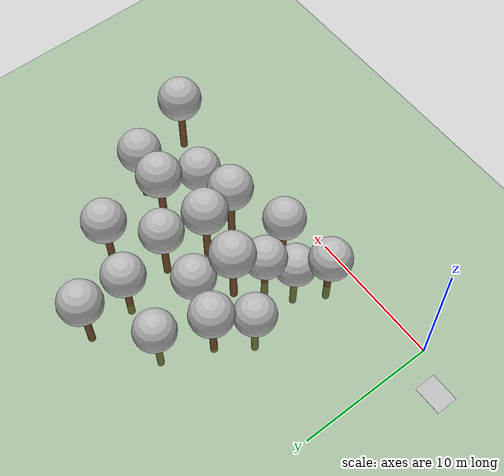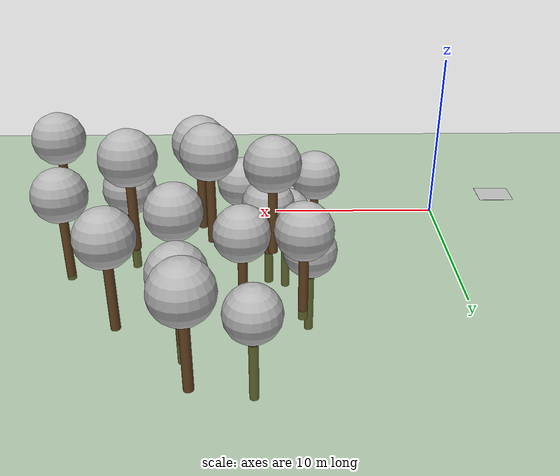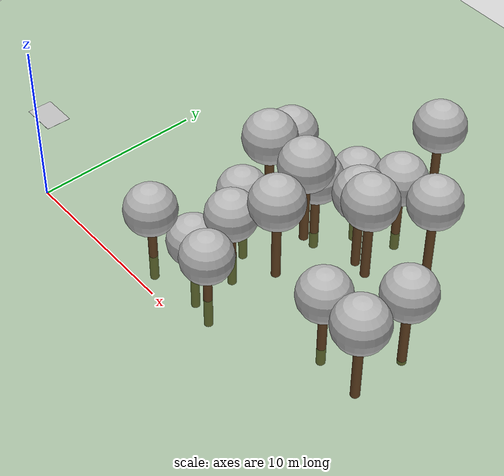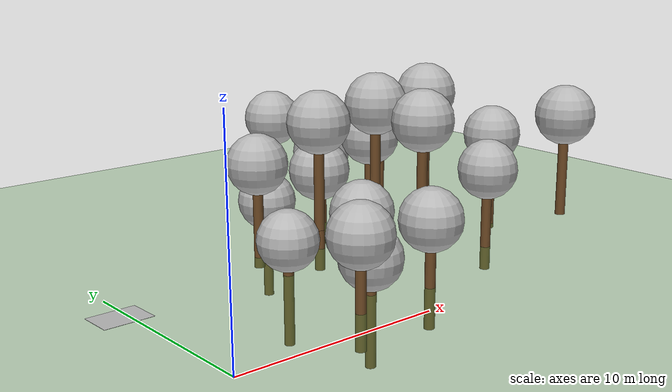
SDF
<sdf version="1.6">
 <world name="default">
  <model name="ground_plane">
   <static>1</static>
   <link name="link">
    <collision name="collision">
     <geometry><plane><normal>0 0 1</normal><size>250 250</size></plane></geometry>
     <surface><friction><ode><mu>1</mu><mu2>1</mu2></ode></friction></surface>
    </collision>
    <visual name="grass">
     <cast_shadows>0</cast_shadows>
     <geometry><plane><normal>0 0 1</normal><size>150 250</size></plane></geometry>
     <material>
      <script><uri>file://media/materials/scripts/Gazebo.material</uri><name>Gazebo/Grass</name></script>
     </material>
    </visual>
   </link>
  </model>
  <model name="tree_simple_1">
   <static>1</static>
   <link name="link">
    <pose>0 0 0.1 0 -0 0</pose>
    <inertial>
     <mass>666</mass>
     <inertia>
      <ixx>0.0861167</ixx>
      <ixy>0</ixy>
      <ixz>0</ixz>
      <iyy>0.0861167</iyy>
      <iyz>0</iyz>
      <izz>0.0861167</izz>
     </inertia>
    </inertial>
    <collision name="collision_trunk">
     <pose>0 0 2 0 -0 0</pose>
     <geometry><cylinder><radius>0.25</radius><length>4</length></cylinder></geometry>
     <surface>
      <contact>
       <poissons_ratio>0.347</poissons_ratio>
       <elastic_modulus>8.8e+09</elastic_modulus>
       <ode><kp>100000</kp><kd>100</kd><max_vel>100</max_vel><min_depth>0.001</min_depth></ode>
      </contact>
      <friction>
       <torsional>
        <coefficient>1</coefficient>
        <use_patch_radius>0</use_patch_radius>
        <surface_radius>0.01</surface_radius>
       </torsional>
      </friction>
     </surface>
    </collision>
    <collision name="collision_treetop">
     <pose>0 0 5.2 0 -0 0</pose>
     <geometry><sphere><radius>1.5</radius></sphere></geometry>
     <surface>
      <contact>
       <poissons_ratio>0.347</poissons_ratio>
       <elastic_modulus>8.8e+09</elastic_modulus>
       <ode><kp>100000</kp><kd>100</kd><max_vel>100</max_vel><min_depth>0.001</min_depth></ode>
      </contact>
      <friction>
       <torsional>
        <coefficient>1</coefficient>
        <use_patch_radius>0</use_patch_radius>
        <surface_radius>0.01</surface_radius>
       </torsional>
      </friction>
     </surface>
    </collision>
    <visual name="trunk">
     <pose>0 0 2 0 -0 0</pose>
     <geometry><cylinder><radius>0.25</radius><length>4</length></cylinder></geometry>
     <material>
      <script>
       <uri>model://tree_simple/scripts</uri>
       <uri>model://tree_simple/materials/textures</uri>
       <name>TreeSimple/Trunk</name>
      </script>
     </material>
    </visual>
    <visual name="treetop">
     <pose>0 0 5.2 0 -0 0</pose>
     <geometry><sphere><radius>1.5</radius></sphere></geometry>
     <material>
      <script>
       <uri>model://tree_simple/scripts</uri>
       <uri>model://tree_simple/materials/textures</uri>
       <name>TreeSimple/Treetop</name>
      </script>
     </material>
    </visual>
   </link>
   <pose>18.1214 12.2632 0 0 -0 0</pose>
  </model>
  <model name="tree_simple_2">
   <static>1</static>
   <link name="link">
    <pose>0 0 0.1 0 -0 0</pose>
    <inertial>
     <mass>666</mass>
     <inertia>
      <ixx>0.0861167</ixx>
      <ixy>0</ixy>
      <ixz>0</ixz>
      <iyy>0.0861167</iyy>
      <iyz>0</iyz>
      <izz>0.0861167</izz>
     </inertia>
    </inertial>
    <collision name="collision_trunk">
     <pose>0 0 2 0 -0 0</pose>
     <geometry><cylinder><radius>0.25</radius><length>4</length></cylinder></geometry>
     <surface>
      <contact>
       <poissons_ratio>0.347</poissons_ratio>
       <elastic_modulus>8.8e+09</elastic_modulus>
       <ode><kp>100000</kp><kd>100</kd><max_vel>100</max_vel><min_depth>0.001</min_depth></ode>
      </contact>
      <friction>
       <torsional>
        <coefficient>1</coefficient>
        <use_patch_radius>0</use_patch_radius>
        <surface_radius>0.01</surface_radius>
       </torsional>
      </friction>
     </surface>
    </collision>
    <collision name="collision_treetop">
     <pose>0 0 5.2 0 -0 0</pose>
     <geometry><sphere><radius>1.5</radius></sphere></geometry>
     <surface>
      <contact>
       <poissons_ratio>0.347</poissons_ratio>
       <elastic_modulus>8.8e+09</elastic_modulus>
       <ode><kp>100000</kp><kd>100</kd><max_vel>100</max_vel><min_depth>0.001</min_depth></ode>
      </contact>
      <friction>
       <torsional>
        <coefficient>1</coefficient>
        <use_patch_radius>0</use_patch_radius>
        <surface_radius>0.01</surface_radius>
       </torsional>
      </friction>
     </surface>
    </collision>
    <visual name="trunk">
     <pose>0 0 2 0 -0 0</pose>
     <geometry><cylinder><radius>0.25</radius><length>4</length></cylinder></geometry>
     <material>
      <script>
       <uri>model://tree_simple/scripts</uri>
       <uri>model://tree_simple/materials/textures</uri>
       <name>TreeSimple/Trunk</name>
      </script>
     </material>
    </visual>
    <visual name="treetop">
     <pose>0 0 5.2 0 -0 0</pose>
     <geometry><sphere><radius>1.5</radius></sphere></geometry>
     <material>
      <script>
       <uri>model://tree_simple/scripts</uri>
       <uri>model://tree_simple/materials/textures</uri>
       <name>TreeSimple/Treetop</name>
      </script>
     </material>
    </visual>
   </link>
   <pose>8.26028 7.60293 -3.64952 0 -0 0</pose>
  </model>
  <model name="tree_simple_11">
   <static>1</static>
   <link name="link">
    <pose>0 0 0.1 0 -0 0</pose>
    <inertial>
     <mass>666</mass>
     <inertia>
      <ixx>0.0861167</ixx>
      <ixy>0</ixy>
      <ixz>0</ixz>
      <iyy>0.0861167</iyy>
      <iyz>0</iyz>
      <izz>0.0861167</izz>
     </inertia>
    </inertial>
    <collision name="collision_trunk">
     <pose>0 0 2 0 -0 0</pose>
     <geometry><cylinder><radius>0.25</radius><length>4</length></cylinder></geometry>
     <surface>
      <contact>
       <poissons_ratio>0.347</poissons_ratio>
       <elastic_modulus>8.8e+09</elastic_modulus>
       <ode><kp>100000</kp><kd>100</kd><max_vel>100</max_vel><min_depth>0.001</min_depth></ode>
      </contact>
      <friction>
       <torsional>
        <coefficient>1</coefficient>
        <use_patch_radius>0</use_patch_radius>
        <surface_radius>0.01</surface_radius>
       </torsional>
      </friction>
     </surface>
    </collision>
    <collision name="collision_treetop">
     <pose>0 0 5.2 0 -0 0</pose>
     <geometry><sphere><radius>1.5</radius></sphere></geometry>
     <surface>
      <contact>
       <poissons_ratio>0.347</poissons_ratio>
       <elastic_modulus>8.8e+09</elastic_modulus>
       <ode><kp>100000</kp><kd>100</kd><max_vel>100</max_vel><min_depth>0.001</min_depth></ode>
      </contact>
      <friction>
       <torsional>
        <coefficient>1</coefficient>
        <use_patch_radius>0</use_patch_radius>
        <surface_radius>0.01</surface_radius>
       </torsional>
      </friction>
     </surface>
    </collision>
    <visual name="trunk">
     <pose>0 0 2 0 -0 0</pose>
     <geometry><cylinder><radius>0.25</radius><length>4</length></cylinder></geometry>
     <material>
      <script>
       <uri>model://tree_simple/scripts</uri>
       <uri>model://tree_simple/materials/textures</uri>
       <name>TreeSimple/Trunk</name>
      </script>
     </material>
    </visual>
    <visual name="treetop">
     <pose>0 0 5.2 0 -0 0</pose>
     <geometry><sphere><radius>1.5</radius></sphere></geometry>
     <material>
      <script>
       <uri>model://tree_simple/scripts</uri>
       <uri>model://tree_simple/materials/textures</uri>
       <name>TreeSimple/Treetop</name>
      </script>
     </material>
    </visual>
   </link>
   <pose>14.0945 16.6625 0 0 -0 0</pose>
  </model>
  <model name="tree_simple_12">
   <static>1</static>
   <link name="link">
    <pose>0 0 0.1 0 -0 0</pose>
    <inertial>
     <mass>666</mass>
     <inertia>
      <ixx>0.0861167</ixx>
      <ixy>0</ixy>
      <ixz>0</ixz>
      <iyy>0.0861167</iyy>
      <iyz>0</iyz>
      <izz>0.0861167</izz>
     </inertia>
    </inertial>
    <collision name="collision_trunk">
     <pose>0 0 2 0 -0 0</pose>
     <geometry><cylinder><radius>0.25</radius><length>4</length></cylinder></geometry>
     <surface>
      <contact>
       <poissons_ratio>0.347</poissons_ratio>
       <elastic_modulus>8.8e+09</elastic_modulus>
       <ode><kp>100000</kp><kd>100</kd><max_vel>100</max_vel><min_depth>0.001</min_depth></ode>
      </contact>
      <friction>
       <torsional>
        <coefficient>1</coefficient>
        <use_patch_radius>0</use_patch_radius>
        <surface_radius>0.01</surface_radius>
       </torsional>
      </friction>
     </surface>
    </collision>
    <collision name="collision_treetop">
     <pose>0 0 5.2 0 -0 0</pose>
     <geometry><sphere><radius>1.5</radius></sphere></geometry>
     <surface>
      <contact>
       <poissons_ratio>0.347</poissons_ratio>
       <elastic_modulus>8.8e+09</elastic_modulus>
       <ode><kp>100000</kp><kd>100</kd><max_vel>100</max_vel><min_depth>0.001</min_depth></ode>
      </contact>
      <friction>
       <torsional>
        <coefficient>1</coefficient>
        <use_patch_radius>0</use_patch_radius>
        <surface_radius>0.01</surface_radius>
       </torsional>
      </friction>
     </surface>
    </collision>
    <visual name="trunk">
     <pose>0 0 2 0 -0 0</pose>
     <geometry><cylinder><radius>0.25</radius><length>4</length></cylinder></geometry>
     <material>
      <script>
       <uri>model://tree_simple/scripts</uri>
       <uri>model://tree_simple/materials/textures</uri>
       <name>TreeSimple/Trunk</name>
      </script>
     </material>
    </visual>
    <visual name="treetop">
     <pose>0 0 5.2 0 -0 0</pose>
     <geometry><sphere><radius>1.5</radius></sphere></geometry>
     <material>
      <script>
       <uri>model://tree_simple/scripts</uri>
       <uri>model://tree_simple/materials/textures</uri>
       <name>TreeSimple/Treetop</name>
      </script>
     </material>
    </visual>
   </link>
   <pose>11.8716 9.75891 -1.275 0 -0 0</pose>
  </model>
  <model name="tree_simple_13">
   <static>1</static>
   <link name="link">
    <pose>0 0 0.1 0 -0 0</pose>
    <inertial>
     <mass>666</mass>
     <inertia>
      <ixx>0.0861167</ixx>
      <ixy>0</ixy>
      <ixz>0</ixz>
      <iyy>0.0861167</iyy>
      <iyz>0</iyz>
      <izz>0.0861167</izz>
     </inertia>
    </inertial>
    <collision name="collision_trunk">
     <pose>0 0 2 0 -0 0</pose>
     <geometry><cylinder><radius>0.25</radius><length>4</length></cylinder></geometry>
     <surface>
      <contact>
       <poissons_ratio>0.347</poissons_ratio>
       <elastic_modulus>8.8e+09</elastic_modulus>
       <ode><kp>100000</kp><kd>100</kd><max_vel>100</max_vel><min_depth>0.001</min_depth></ode>
      </contact>
      <friction>
       <torsional>
        <coefficient>1</coefficient>
        <use_patch_radius>0</use_patch_radius>
        <surface_radius>0.01</surface_radius>
       </torsional>
      </friction>
     </surface>
    </collision>
    <collision name="collision_treetop">
     <pose>0 0 5.2 0 -0 0</pose>
     <geometry><sphere><radius>1.5</radius></sphere></geometry>
     <surface>
      <contact>
       <poissons_ratio>0.347</poissons_ratio>
       <elastic_modulus>8.8e+09</elastic_modulus>
       <ode><kp>100000</kp><kd>100</kd><max_vel>100</max_vel><min_depth>0.001</min_depth></ode>
      </contact>
      <friction>
       <torsional>
        <coefficient>1</coefficient>
        <use_patch_radius>0</use_patch_radius>
        <surface_radius>0.01</surface_radius>
       </torsional>
      </friction>
     </surface>
    </collision>
    <visual name="trunk">
     <pose>0 0 2 0 -0 0</pose>
     <geometry><cylinder><radius>0.25</radius><length>4</length></cylinder></geometry>
     <material>
      <script>
       <uri>model://tree_simple/scripts</uri>
       <uri>model://tree_simple/materials/textures</uri>
       <name>TreeSimple/Trunk</name>
      </script>
     </material>
    </visual>
    <visual name="treetop">
     <pose>0 0 5.2 0 -0 0</pose>
     <geometry><sphere><radius>1.5</radius></sphere></geometry>
     <material>
      <script>
       <uri>model://tree_simple/scripts</uri>
       <uri>model://tree_simple/materials/textures</uri>
       <name>TreeSimple/Treetop</name>
      </script>
     </material>
    </visual>
   </link>
   <pose>10.5318 4.98436 -2.12992 0 -0 0</pose>
  </model>
  <model name="tree_simple_14">
   <static>1</static>
   <link name="link">
    <pose>0 0 0.1 0 -0 0</pose>
    <inertial>
     <mass>666</mass>
     <inertia>
      <ixx>0.0861167</ixx>
      <ixy>0</ixy>
      <ixz>0</ixz>
      <iyy>0.0861167</iyy>
      <iyz>0</iyz>
      <izz>0.0861167</izz>
     </inertia>
    </inertial>
    <collision name="collision_trunk">
     <pose>0 0 2 0 -0 0</pose>
     <geometry><cylinder><radius>0.25</radius><length>4</length></cylinder></geometry>
     <surface>
      <contact>
       <poissons_ratio>0.347</poissons_ratio>
       <elastic_modulus>8.8e+09</elastic_modulus>
       <ode><kp>100000</kp><kd>100</kd><max_vel>100</max_vel><min_depth>0.001</min_depth></ode>
      </contact>
      <friction>
       <torsional>
        <coefficient>1</coefficient>
        <use_patch_radius>0</use_patch_radius>
        <surface_radius>0.01</surface_radius>
       </torsional>
      </friction>
     </surface>
    </collision>
    <collision name="collision_treetop">
     <pose>0 0 5.2 0 -0 0</pose>
     <geometry><sphere><radius>1.5</radius></sphere></geometry>
     <surface>
      <contact>
       <poissons_ratio>0.347</poissons_ratio>
       <elastic_modulus>8.8e+09</elastic_modulus>
       <ode><kp>100000</kp><kd>100</kd><max_vel>100</max_vel><min_depth>0.001</min_depth></ode>
      </contact>
      <friction>
       <torsional>
        <coefficient>1</coefficient>
        <use_patch_radius>0</use_patch_radius>
        <surface_radius>0.01</surface_radius>
       </torsional>
      </friction>
     </surface>
    </collision>
    <visual name="trunk">
     <pose>0 0 2 0 -0 0</pose>
     <geometry><cylinder><radius>0.25</radius><length>4</length></cylinder></geometry>
     <material>
      <script>
       <uri>model://tree_simple/scripts</uri>
       <uri>model://tree_simple/materials/textures</uri>
       <name>TreeSimple/Trunk</name>
      </script>
     </material>
    </visual>
    <visual name="treetop">
     <pose>0 0 5.2 0 -0 0</pose>
     <geometry><sphere><radius>1.5</radius></sphere></geometry>
     <material>
      <script>
       <uri>model://tree_simple/scripts</uri>
       <uri>model://tree_simple/materials/textures</uri>
       <name>TreeSimple/Treetop</name>
      </script>
     </material>
    </visual>
   </link>
   <pose>22.4121 3.0458 1.13672 0 -0 0</pose>
  </model>
  <model name="tree_simple_15">
   <static>1</static>
   <link name="link">
    <pose>0 0 0.1 0 -0 0</pose>
    <inertial>
     <mass>666</mass>
     <inertia>
      <ixx>0.0861167</ixx>
      <ixy>0</ixy>
      <ixz>0</ixz>
      <iyy>0.0861167</iyy>
      <iyz>0</iyz>
      <izz>0.0861167</izz>
     </inertia>
    </inertial>
    <collision name="collision_trunk">
     <pose>0 0 2 0 -0 0</pose>
     <geometry><cylinder><radius>0.25</radius><length>4</length></cylinder></geometry>
     <surface>
      <contact>
       <poissons_ratio>0.347</poissons_ratio>
       <elastic_modulus>8.8e+09</elastic_modulus>
       <ode><kp>100000</kp><kd>100</kd><max_vel>100</max_vel><min_depth>0.001</min_depth></ode>
      </contact>
      <friction>
       <torsional>
        <coefficient>1</coefficient>
        <use_patch_radius>0</use_patch_radius>
        <surface_radius>0.01</surface_radius>
       </torsional>
      </friction>
     </surface>
    </collision>
    <collision name="collision_treetop">
     <pose>0 0 5.2 0 -0 0</pose>
     <geometry><sphere><radius>1.5</radius></sphere></geometry>
     <surface>
      <contact>
       <poissons_ratio>0.347</poissons_ratio>
       <elastic_modulus>8.8e+09</elastic_modulus>
       <ode><kp>100000</kp><kd>100</kd><max_vel>100</max_vel><min_depth>0.001</min_depth></ode>
      </contact>
      <friction>
       <torsional>
        <coefficient>1</coefficient>
        <use_patch_radius>0</use_patch_radius>
        <surface_radius>0.01</surface_radius>
       </torsional>
      </friction>
     </surface>
    </collision>
    <visual name="trunk">
     <pose>0 0 2 0 -0 0</pose>
     <geometry><cylinder><radius>0.25</radius><length>4</length></cylinder></geometry>
     <material>
      <script>
       <uri>model://tree_simple/scripts</uri>
       <uri>model://tree_simple/materials/textures</uri>
       <name>TreeSimple/Trunk</name>
      </script>
     </material>
    </visual>
    <visual name="treetop">
     <pose>0 0 5.2 0 -0 0</pose>
     <geometry><sphere><radius>1.5</radius></sphere></geometry>
     <material>
      <script>
       <uri>model://tree_simple/scripts</uri>
       <uri>model://tree_simple/materials/textures</uri>
       <name>TreeSimple/Treetop</name>
      </script>
     </material>
    </visual>
   </link>
   <pose>14.7769 13.2103 -1.35046 0 -0 0</pose>
  </model>
  <model name="tree_simple_17">
   <static>1</static>
   <link name="link">
    <pose>0 0 0.1 0 -0 0</pose>
    <inertial>
     <mass>666</mass>
     <inertia>
      <ixx>0.0861167</ixx>
      <ixy>0</ixy>
      <ixz>0</ixz>
      <iyy>0.0861167</iyy>
      <iyz>0</iyz>
      <izz>0.0861167</izz>
     </inertia>
    </inertial>
    <collision name="collision_trunk">
     <pose>0 0 2 0 -0 0</pose>
     <geometry><cylinder><radius>0.25</radius><length>4</length></cylinder></geometry>
     <surface>
      <contact>
       <poissons_ratio>0.347</poissons_ratio>
       <elastic_modulus>8.8e+09</elastic_modulus>
       <ode><kp>100000</kp><kd>100</kd><max_vel>100</max_vel><min_depth>0.001</min_depth></ode>
      </contact>
      <friction>
       <torsional>
        <coefficient>1</coefficient>
        <use_patch_radius>0</use_patch_radius>
        <surface_radius>0.01</surface_radius>
       </torsional>
      </friction>
     </surface>
    </collision>
    <collision name="collision_treetop">
     <pose>0 0 5.2 0 -0 0</pose>
     <geometry><sphere><radius>1.5</radius></sphere></geometry>
     <surface>
      <contact>
       <poissons_ratio>0.347</poissons_ratio>
       <elastic_modulus>8.8e+09</elastic_modulus>
       <ode><kp>100000</kp><kd>100</kd><max_vel>100</max_vel><min_depth>0.001</min_depth></ode>
      </contact>
      <friction>
       <torsional>
        <coefficient>1</coefficient>
        <use_patch_radius>0</use_patch_radius>
        <surface_radius>0.01</surface_radius>
       </torsional>
      </friction>
     </surface>
    </collision>
    <visual name="trunk">
     <pose>0 0 2 0 -0 0</pose>
     <geometry><cylinder><radius>0.25</radius><length>4</length></cylinder></geometry>
     <material>
      <script>
       <uri>model://tree_simple/scripts</uri>
       <uri>model://tree_simple/materials/textures</uri>
       <name>TreeSimple/Trunk</name>
      </script>
     </material>
    </visual>
    <visual name="treetop">
     <pose>0 0 5.2 0 -0 0</pose>
     <geometry><sphere><radius>1.5</radius></sphere></geometry>
     <material>
      <script>
       <uri>model://tree_simple/scripts</uri>
       <uri>model://tree_simple/materials/textures</uri>
       <name>TreeSimple/Treetop</name>
      </script>
     </material>
    </visual>
   </link>
   <pose>21.5502 7.15897 -0.384211 0 -0 0</pose>
  </model>
  <model name="tree_simple_19">
   <static>1</static>
   <link name="link">
    <pose>0 0 0.1 0 -0 0</pose>
    <inertial>
     <mass>666</mass>
     <inertia>
      <ixx>0.0861167</ixx>
      <ixy>0</ixy>
      <ixz>0</ixz>
      <iyy>0.0861167</iyy>
      <iyz>0</iyz>
      <izz>0.0861167</izz>
     </inertia>
    </inertial>
    <collision name="collision_trunk">
     <pose>0 0 2 0 -0 0</pose>
     <geometry><cylinder><radius>0.25</radius><length>4</length></cylinder></geometry>
     <surface>
      <contact>
       <poissons_ratio>0.347</poissons_ratio>
       <elastic_modulus>8.8e+09</elastic_modulus>
       <ode><kp>100000</kp><kd>100</kd><max_vel>100</max_vel><min_depth>0.001</min_depth></ode>
      </contact>
      <friction>
       <torsional>
        <coefficient>1</coefficient>
        <use_patch_radius>0</use_patch_radius>
        <surface_radius>0.01</surface_radius>
       </torsional>
      </friction>
     </surface>
    </collision>
    <collision name="collision_treetop">
     <pose>0 0 5.2 0 -0 0</pose>
     <geometry><sphere><radius>1.5</radius></sphere></geometry>
     <surface>
      <contact>
       <poissons_ratio>0.347</poissons_ratio>
       <elastic_modulus>8.8e+09</elastic_modulus>
       <ode><kp>100000</kp><kd>100</kd><max_vel>100</max_vel><min_depth>0.001</min_depth></ode>
      </contact>
      <friction>
       <torsional>
        <coefficient>1</coefficient>
        <use_patch_radius>0</use_patch_radius>
        <surface_radius>0.01</surface_radius>
       </torsional>
      </friction>
     </surface>
    </collision>
    <visual name="trunk">
     <pose>0 0 2 0 -0 0</pose>
     <geometry><cylinder><radius>0.25</radius><length>4</length></cylinder></geometry>
     <material>
      <script>
       <uri>model://tree_simple/scripts</uri>
       <uri>model://tree_simple/materials/textures</uri>
       <name>TreeSimple/Trunk</name>
      </script>
     </material>
    </visual>
    <visual name="treetop">
     <pose>0 0 5.2 0 -0 0</pose>
     <geometry><sphere><radius>1.5</radius></sphere></geometry>
     <material>
      <script>
       <uri>model://tree_simple/scripts</uri>
       <uri>model://tree_simple/materials/textures</uri>
       <name>TreeSimple/Treetop</name>
      </script>
     </material>
    </visual>
   </link>
   <pose>17.5427 8.12556 2.16351 0 -0 0</pose>
  </model>
  <model name="tree_simple_21">
   <static>1</static>
   <link name="link">
    <pose>0 0 0.1 0 -0 0</pose>
    <inertial>
     <mass>666</mass>
     <inertia>
      <ixx>0.0861167</ixx>
      <ixy>0</ixy>
      <ixz>0</ixz>
      <iyy>0.0861167</iyy>
      <iyz>0</iyz>
      <izz>0.0861167</izz>
     </inertia>
    </inertial>
    <collision name="collision_trunk">
     <pose>0 0 2 0 -0 0</pose>
     <geometry><cylinder><radius>0.25</radius><length>4</length></cylinder></geometry>
     <surface>
      <contact>
       <poissons_ratio>0.347</poissons_ratio>
       <elastic_modulus>8.8e+09</elastic_modulus>
       <ode><kp>100000</kp><kd>100</kd><max_vel>100</max_vel><min_depth>0.001</min_depth></ode>
      </contact>
      <friction>
       <torsional>
        <coefficient>1</coefficient>
        <use_patch_radius>0</use_patch_radius>
        <surface_radius>0.01</surface_radius>
       </torsional>
      </friction>
     </surface>
    </collision>
    <collision name="collision_treetop">
     <pose>0 0 5.2 0 -0 0</pose>
     <geometry><sphere><radius>1.5</radius></sphere></geometry>
     <surface>
      <contact>
       <poissons_ratio>0.347</poissons_ratio>
       <elastic_modulus>8.8e+09</elastic_modulus>
       <ode><kp>100000</kp><kd>100</kd><max_vel>100</max_vel><min_depth>0.001</min_depth></ode>
      </contact>
      <friction>
       <torsional>
        <coefficient>1</coefficient>
        <use_patch_radius>0</use_patch_radius>
        <surface_radius>0.01</surface_radius>
       </torsional>
      </friction>
     </surface>
    </collision>
    <visual name="trunk">
     <pose>0 0 2 0 -0 0</pose>
     <geometry><cylinder><radius>0.25</radius><length>4</length></cylinder></geometry>
     <material>
      <script>
       <uri>model://tree_simple/scripts</uri>
       <uri>model://tree_simple/materials/textures</uri>
       <name>TreeSimple/Trunk</name>
      </script>
     </material>
    </visual>
    <visual name="treetop">
     <pose>0 0 5.2 0 -0 0</pose>
     <geometry><sphere><radius>1.5</radius></sphere></geometry>
     <material>
      <script>
       <uri>model://tree_simple/scripts</uri>
       <uri>model://tree_simple/materials/textures</uri>
       <name>TreeSimple/Treetop</name>
      </script>
     </material>
    </visual>
   </link>
   <pose>18.3925 4.50955 -1.31425 0 -0 0</pose>
  </model>
  <model name="tree_simple_22">
   <static>1</static>
   <link name="link">
    <pose>0 0 0.1 0 -0 0</pose>
    <inertial>
     <mass>666</mass>
     <inertia>
      <ixx>0.0861167</ixx>
      <ixy>0</ixy>
      <ixz>0</ixz>
      <iyy>0.0861167</iyy>
      <iyz>0</iyz>
      <izz>0.0861167</izz>
     </inertia>
    </inertial>
    <collision name="collision_trunk">
     <pose>0 0 2 0 -0 0</pose>
     <geometry><cylinder><radius>0.25</radius><length>4</length></cylinder></geometry>
     <surface>
      <contact>
       <poissons_ratio>0.347</poissons_ratio>
       <elastic_modulus>8.8e+09</elastic_modulus>
       <ode><kp>100000</kp><kd>100</kd><max_vel>100</max_vel><min_depth>0.001</min_depth></ode>
      </contact>
      <friction>
       <torsional>
        <coefficient>1</coefficient>
        <use_patch_radius>0</use_patch_radius>
        <surface_radius>0.01</surface_radius>
       </torsional>
      </friction>
     </surface>
    </collision>
    <collision name="collision_treetop">
     <pose>0 0 5.2 0 -0 0</pose>
     <geometry><sphere><radius>1.5</radius></sphere></geometry>
     <surface>
      <contact>
       <poissons_ratio>0.347</poissons_ratio>
       <elastic_modulus>8.8e+09</elastic_modulus>
       <ode><kp>100000</kp><kd>100</kd><max_vel>100</max_vel><min_depth>0.001</min_depth></ode>
      </contact>
      <friction>
       <torsional>
        <coefficient>1</coefficient>
        <use_patch_radius>0</use_patch_radius>
        <surface_radius>0.01</surface_radius>
       </torsional>
      </friction>
     </surface>
    </collision>
    <visual name="trunk">
     <pose>0 0 2 0 -0 0</pose>
     <geometry><cylinder><radius>0.25</radius><length>4</length></cylinder></geometry>
     <material>
      <script>
       <uri>model://tree_simple/scripts</uri>
       <uri>model://tree_simple/materials/textures</uri>
       <name>TreeSimple/Trunk</name>
      </script>
     </material>
    </visual>
    <visual name="treetop">
     <pose>0 0 5.2 0 -0 0</pose>
     <geometry><sphere><radius>1.5</radius></sphere></geometry>
     <material>
      <script>
       <uri>model://tree_simple/scripts</uri>
       <uri>model://tree_simple/materials/textures</uri>
       <name>TreeSimple/Treetop</name>
      </script>
     </material>
    </visual>
   </link>
   <pose>11.2943 13.4403 -3.52796 0 -0 0</pose>
  </model>
  <model name="tree_simple_23">
   <static>1</static>
   <link name="link">
    <pose>0 0 0.1 0 -0 0</pose>
    <inertial>
     <mass>666</mass>
     <inertia>
      <ixx>0.0861167</ixx>
      <ixy>0</ixy>
      <ixz>0</ixz>
      <iyy>0.0861167</iyy>
      <iyz>0</iyz>
      <izz>0.0861167</izz>
     </inertia>
    </inertial>
    <collision name="collision_trunk">
     <pose>0 0 2 0 -0 0</pose>
     <geometry><cylinder><radius>0.25</radius><length>4</length></cylinder></geometry>
     <surface>
      <contact>
       <poissons_ratio>0.347</poissons_ratio>
       <elastic_modulus>8.8e+09</elastic_modulus>
       <ode><kp>100000</kp><kd>100</kd><max_vel>100</max_vel><min_depth>0.001</min_depth></ode>
      </contact>
      <friction>
       <torsional>
        <coefficient>1</coefficient>
        <use_patch_radius>0</use_patch_radius>
        <surface_radius>0.01</surface_radius>
       </torsional>
      </friction>
     </surface>
    </collision>
    <collision name="collision_treetop">
     <pose>0 0 5.2 0 -0 0</pose>
     <geometry><sphere><radius>1.5</radius></sphere></geometry>
     <surface>
      <contact>
       <poissons_ratio>0.347</poissons_ratio>
       <elastic_modulus>8.8e+09</elastic_modulus>
       <ode><kp>100000</kp><kd>100</kd><max_vel>100</max_vel><min_depth>0.001</min_depth></ode>
      </contact>
      <friction>
       <torsional>
        <coefficient>1</coefficient>
        <use_patch_radius>0</use_patch_radius>
        <surface_radius>0.01</surface_radius>
       </torsional>
      </friction>
     </surface>
    </collision>
    <visual name="trunk">
     <pose>0 0 2 0 -0 0</pose>
     <geometry><cylinder><radius>0.25</radius><length>4</length></cylinder></geometry>
     <material>
      <script>
       <uri>model://tree_simple/scripts</uri>
       <uri>model://tree_simple/materials/textures</uri>
       <name>TreeSimple/Trunk</name>
      </script>
     </material>
    </visual>
    <visual name="treetop">
     <pose>0 0 5.2 0 -0 0</pose>
     <geometry><sphere><radius>1.5</radius></sphere></geometry>
     <material>
      <script>
       <uri>model://tree_simple/scripts</uri>
       <uri>model://tree_simple/materials/textures</uri>
       <name>TreeSimple/Treetop</name>
      </script>
     </material>
    </visual>
   </link>
   <pose>7.69657 1.78666 -1.8698 0 -0 0</pose>
  </model>
  <model name="tree_simple_25">
   <static>1</static>
   <link name="link">
    <pose>0 0 0.1 0 -0 0</pose>
    <inertial>
     <mass>666</mass>
     <inertia>
      <ixx>0.0861167</ixx>
      <ixy>0</ixy>
      <ixz>0</ixz>
      <iyy>0.0861167</iyy>
      <iyz>0</iyz>
      <izz>0.0861167</izz>
     </inertia>
    </inertial>
    <collision name="collision_trunk">
     <pose>0 0 2 0 -0 0</pose>
     <geometry><cylinder><radius>0.25</radius><length>4</length></cylinder></geometry>
     <surface>
      <contact>
       <poissons_ratio>0.347</poissons_ratio>
       <elastic_modulus>8.8e+09</elastic_modulus>
       <ode><kp>100000</kp><kd>100</kd><max_vel>100</max_vel><min_depth>0.001</min_depth></ode>
      </contact>
      <friction>
       <torsional>
        <coefficient>1</coefficient>
        <use_patch_radius>0</use_patch_radius>
        <surface_radius>0.01</surface_radius>
       </torsional>
      </friction>
     </surface>
    </collision>
    <collision name="collision_treetop">
     <pose>0 0 5.2 0 -0 0</pose>
     <geometry><sphere><radius>1.5</radius></sphere></geometry>
     <surface>
      <contact>
       <poissons_ratio>0.347</poissons_ratio>
       <elastic_modulus>8.8e+09</elastic_modulus>
       <ode><kp>100000</kp><kd>100</kd><max_vel>100</max_vel><min_depth>0.001</min_depth></ode>
      </contact>
      <friction>
       <torsional>
        <coefficient>1</coefficient>
        <use_patch_radius>0</use_patch_radius>
        <surface_radius>0.01</surface_radius>
       </torsional>
      </friction>
     </surface>
    </collision>
    <visual name="trunk">
     <pose>0 0 2 0 -0 0</pose>
     <geometry><cylinder><radius>0.25</radius><length>4</length></cylinder></geometry>
     <material>
      <script>
       <uri>model://tree_simple/scripts</uri>
       <uri>model://tree_simple/materials/textures</uri>
       <name>TreeSimple/Trunk</name>
      </script>
     </material>
    </visual>
    <visual name="treetop">
     <pose>0 0 5.2 0 -0 0</pose>
     <geometry><sphere><radius>1.5</radius></sphere></geometry>
     <material>
      <script>
       <uri>model://tree_simple/scripts</uri>
       <uri>model://tree_simple/materials/textures</uri>
       <name>TreeSimple/Treetop</name>
      </script>
     </material>
    </visual>
   </link>
   <pose>14.2484 4.92325 1.6282 0 -0 0</pose>
  </model>
  <model name="tree_simple_26">
   <static>1</static>
   <link name="link">
    <pose>0 0 0.1 0 -0 0</pose>
    <inertial>
     <mass>666</mass>
     <inertia>
      <ixx>0.0861167</ixx>
      <ixy>0</ixy>
      <ixz>0</ixz>
      <iyy>0.0861167</iyy>
      <iyz>0</iyz>
      <izz>0.0861167</izz>
     </inertia>
    </inertial>
    <collision name="collision_trunk">
     <pose>0 0 2 0 -0 0</pose>
     <geometry><cylinder><radius>0.25</radius><length>4</length></cylinder></geometry>
     <surface>
      <contact>
       <poissons_ratio>0.347</poissons_ratio>
       <elastic_modulus>8.8e+09</elastic_modulus>
       <ode><kp>100000</kp><kd>100</kd><max_vel>100</max_vel><min_depth>0.001</min_depth></ode>
      </contact>
      <friction>
       <torsional>
        <coefficient>1</coefficient>
        <use_patch_radius>0</use_patch_radius>
        <surface_radius>0.01</surface_radius>
       </torsional>
      </friction>
     </surface>
    </collision>
    <collision name="collision_treetop">
     <pose>0 0 5.2 0 -0 0</pose>
     <geometry><sphere><radius>1.5</radius></sphere></geometry>
     <surface>
      <contact>
       <poissons_ratio>0.347</poissons_ratio>
       <elastic_modulus>8.8e+09</elastic_modulus>
       <ode><kp>100000</kp><kd>100</kd><max_vel>100</max_vel><min_depth>0.001</min_depth></ode>
      </contact>
      <friction>
       <torsional>
        <coefficient>1</coefficient>
        <use_patch_radius>0</use_patch_radius>
        <surface_radius>0.01</surface_radius>
       </torsional>
      </friction>
     </surface>
    </collision>
    <visual name="trunk">
     <pose>0 0 2 0 -0 0</pose>
     <geometry><cylinder><radius>0.25</radius><length>4</length></cylinder></geometry>
     <material>
      <script>
       <uri>model://tree_simple/scripts</uri>
       <uri>model://tree_simple/materials/textures</uri>
       <name>TreeSimple/Trunk</name>
      </script>
     </material>
    </visual>
    <visual name="treetop">
     <pose>0 0 5.2 0 -0 0</pose>
     <geometry><sphere><radius>1.5</radius></sphere></geometry>
     <material>
      <script>
       <uri>model://tree_simple/scripts</uri>
       <uri>model://tree_simple/materials/textures</uri>
       <name>TreeSimple/Treetop</name>
      </script>
     </material>
    </visual>
   </link>
   <pose>15.2056 9.77528 0 0 -0 0</pose>
  </model>
  <model name="tree_simple_28">
   <static>1</static>
   <link name="link">
    <pose>0 0 0.1 0 -0 0</pose>
    <inertial>
     <mass>666</mass>
     <inertia>
      <ixx>0.0861167</ixx>
      <ixy>0</ixy>
      <ixz>0</ixz>
      <iyy>0.0861167</iyy>
      <iyz>0</iyz>
      <izz>0.0861167</izz>
     </inertia>
    </inertial>
    <collision name="collision_trunk">
     <pose>0 0 2 0 -0 0</pose>
     <geometry><cylinder><radius>0.25</radius><length>4</length></cylinder></geometry>
     <surface>
      <contact>
       <poissons_ratio>0.347</poissons_ratio>
       <elastic_modulus>8.8e+09</elastic_modulus>
       <ode><kp>100000</kp><kd>100</kd><max_vel>100</max_vel><min_depth>0.001</min_depth></ode>
      </contact>
      <friction>
       <torsional>
        <coefficient>1</coefficient>
        <use_patch_radius>0</use_patch_radius>
        <surface_radius>0.01</surface_radius>
       </torsional>
      </friction>
     </surface>
    </collision>
    <collision name="collision_treetop">
     <pose>0 0 5.2 0 -0 0</pose>
     <geometry><sphere><radius>1.5</radius></sphere></geometry>
     <surface>
      <contact>
       <poissons_ratio>0.347</poissons_ratio>
       <elastic_modulus>8.8e+09</elastic_modulus>
       <ode><kp>100000</kp><kd>100</kd><max_vel>100</max_vel><min_depth>0.001</min_depth></ode>
      </contact>
      <friction>
       <torsional>
        <coefficient>1</coefficient>
        <use_patch_radius>0</use_patch_radius>
        <surface_radius>0.01</surface_radius>
       </torsional>
      </friction>
     </surface>
    </collision>
    <visual name="trunk">
     <pose>0 0 2 0 -0 0</pose>
     <geometry><cylinder><radius>0.25</radius><length>4</length></cylinder></geometry>
     <material>
      <script>
       <uri>model://tree_simple/scripts</uri>
       <uri>model://tree_simple/materials/textures</uri>
       <name>TreeSimple/Trunk</name>
      </script>
     </material>
    </visual>
    <visual name="treetop">
     <pose>0 0 5.2 0 -0 0</pose>
     <geometry><sphere><radius>1.5</radius></sphere></geometry>
     <material>
      <script>
       <uri>model://tree_simple/scripts</uri>
       <uri>model://tree_simple/materials/textures</uri>
       <name>TreeSimple/Treetop</name>
      </script>
     </material>
    </visual>
   </link>
   <pose>8.77056 10.6438 -0.660845 0 -0 0</pose>
  </model>
  <model name="tree_simple_13_clone">
   <static>1</static>
   <link name="link">
    <pose>0 0 0.1 0 -0 0</pose>
    <inertial>
     <mass>666</mass>
     <inertia>
      <ixx>0.0861167</ixx>
      <ixy>0</ixy>
      <ixz>0</ixz>
      <iyy>0.0861167</iyy>
      <iyz>0</iyz>
      <izz>0.0861167</izz>
     </inertia>
    </inertial>
    <collision name="collision_trunk">
     <pose>0 0 2 0 -0 0</pose>
     <geometry><cylinder><radius>0.25</radius><length>4</length></cylinder></geometry>
     <surface>
      <contact>
       <poissons_ratio>0.347</poissons_ratio>
       <elastic_modulus>8.8e+09</elastic_modulus>
       <ode><kp>100000</kp><kd>100</kd><max_vel>100</max_vel><min_depth>0.001</min_depth></ode>
      </contact>
      <friction>
       <torsional>
        <coefficient>1</coefficient>
        <use_patch_radius>0</use_patch_radius>
        <surface_radius>0.01</surface_radius>
       </torsional>
      </friction>
     </surface>
    </collision>
    <collision name="collision_treetop">
     <pose>0 0 5.2 0 -0 0</pose>
     <geometry><sphere><radius>1.5</radius></sphere></geometry>
     <surface>
      <contact>
       <poissons_ratio>0.347</poissons_ratio>
       <elastic_modulus>8.8e+09</elastic_modulus>
       <ode><kp>100000</kp><kd>100</kd><max_vel>100</max_vel><min_depth>0.001</min_depth></ode>
      </contact>
      <friction>
       <torsional>
        <coefficient>1</coefficient>
        <use_patch_radius>0</use_patch_radius>
        <surface_radius>0.01</surface_radius>
       </torsional>
      </friction>
     </surface>
    </collision>
    <visual name="trunk">
     <pose>0 0 2 0 -0 0</pose>
     <geometry><cylinder><radius>0.25</radius><length>4</length></cylinder></geometry>
     <material>
      <script>
       <uri>model://tree_simple/scripts</uri>
       <uri>model://tree_simple/materials/textures</uri>
       <name>TreeSimple/Trunk</name>
      </script>
     </material>
    </visual>
    <visual name="treetop">
     <pose>0 0 5.2 0 -0 0</pose>
     <geometry><sphere><radius>1.5</radius></sphere></geometry>
     <material>
      <script>
       <uri>model://tree_simple/scripts</uri>
       <uri>model://tree_simple/materials/textures</uri>
       <name>TreeSimple/Treetop</name>
      </script>
     </material>
    </visual>
   </link>
   <pose>12.1007 2.09122 -2.12992 0 -0 0</pose>
  </model>
  <model name="tree_simple_25_clone">
   <static>1</static>
   <link name="link">
    <pose>0 0 0.1 0 -0 0</pose>
    <inertial>
     <mass>666</mass>
     <inertia>
      <ixx>0.0861167</ixx>
      <ixy>0</ixy>
      <ixz>0</ixz>
      <iyy>0.0861167</iyy>
      <iyz>0</iyz>
      <izz>0.0861167</izz>
     </inertia>
    </inertial>
    <collision name="collision_trunk">
     <pose>0 0 2 0 -0 0</pose>
     <geometry><cylinder><radius>0.25</radius><length>4</length></cylinder></geometry>
     <surface>
      <contact>
       <poissons_ratio>0.347</poissons_ratio>
       <elastic_modulus>8.8e+09</elastic_modulus>
       <ode><kp>100000</kp><kd>100</kd><max_vel>100</max_vel><min_depth>0.001</min_depth></ode>
      </contact>
      <friction>
       <torsional>
        <coefficient>1</coefficient>
        <use_patch_radius>0</use_patch_radius>
        <surface_radius>0.01</surface_radius>
       </torsional>
      </friction>
     </surface>
    </collision>
    <collision name="collision_treetop">
     <pose>0 0 5.2 0 -0 0</pose>
     <geometry><sphere><radius>1.5</radius></sphere></geometry>
     <surface>
      <contact>
       <poissons_ratio>0.347</poissons_ratio>
       <elastic_modulus>8.8e+09</elastic_modulus>
       <ode><kp>100000</kp><kd>100</kd><max_vel>100</max_vel><min_depth>0.001</min_depth></ode>
      </contact>
      <friction>
       <torsional>
        <coefficient>1</coefficient>
        <use_patch_radius>0</use_patch_radius>
        <surface_radius>0.01</surface_radius>
       </torsional>
      </friction>
     </surface>
    </collision>
    <visual name="trunk">
     <pose>0 0 2 0 -0 0</pose>
     <geometry><cylinder><radius>0.25</radius><length>4</length></cylinder></geometry>
     <material>
      <script>
       <uri>model://tree_simple/scripts</uri>
       <uri>model://tree_simple/materials/textures</uri>
       <name>TreeSimple/Trunk</name>
      </script>
     </material>
    </visual>
    <visual name="treetop">
     <pose>0 0 5.2 0 -0 0</pose>
     <geometry><sphere><radius>1.5</radius></sphere></geometry>
     <material>
      <script>
       <uri>model://tree_simple/scripts</uri>
       <uri>model://tree_simple/materials/textures</uri>
       <name>TreeSimple/Treetop</name>
      </script>
     </material>
    </visual>
   </link>
   <pose>10.293 7.7905 1.6282 0 -0 0</pose>
  </model>
  <model name="tree_simple_19_clone">
   <static>1</static>
   <link name="link">
    <pose>0 0 0.1 0 -0 0</pose>
    <inertial>
     <mass>666</mass>
     <inertia>
      <ixx>0.0861167</ixx>
      <ixy>0</ixy>
      <ixz>0</ixz>
      <iyy>0.0861167</iyy>
      <iyz>0</iyz>
      <izz>0.0861167</izz>
     </inertia>
    </inertial>
    <collision name="collision_trunk">
     <pose>0 0 2 0 -0 0</pose>
     <geometry><cylinder><radius>0.25</radius><length>4</length></cylinder></geometry>
     <surface>
      <contact>
       <poissons_ratio>0.347</poissons_ratio>
       <elastic_modulus>8.8e+09</elastic_modulus>
       <ode><kp>100000</kp><kd>100</kd><max_vel>100</max_vel><min_depth>0.001</min_depth></ode>
      </contact>
      <friction>
       <torsional>
        <coefficient>1</coefficient>
        <use_patch_radius>0</use_patch_radius>
        <surface_radius>0.01</surface_radius>
       </torsional>
      </friction>
     </surface>
    </collision>
    <collision name="collision_treetop">
     <pose>0 0 5.2 0 -0 0</pose>
     <geometry><sphere><radius>1.5</radius></sphere></geometry>
     <surface>
      <contact>
       <poissons_ratio>0.347</poissons_ratio>
       <elastic_modulus>8.8e+09</elastic_modulus>
       <ode><kp>100000</kp><kd>100</kd><max_vel>100</max_vel><min_depth>0.001</min_depth></ode>
      </contact>
      <friction>
       <torsional>
        <coefficient>1</coefficient>
        <use_patch_radius>0</use_patch_radius>
        <surface_radius>0.01</surface_radius>
       </torsional>
      </friction>
     </surface>
    </collision>
    <visual name="trunk">
     <pose>0 0 2 0 -0 0</pose>
     <geometry><cylinder><radius>0.25</radius><length>4</length></cylinder></geometry>
     <material>
      <script>
       <uri>model://tree_simple/scripts</uri>
       <uri>model://tree_simple/materials/textures</uri>
       <name>TreeSimple/Trunk</name>
      </script>
     </material>
    </visual>
    <visual name="treetop">
     <pose>0 0 5.2 0 -0 0</pose>
     <geometry><sphere><radius>1.5</radius></sphere></geometry>
     <material>
      <script>
       <uri>model://tree_simple/scripts</uri>
       <uri>model://tree_simple/materials/textures</uri>
       <name>TreeSimple/Treetop</name>
      </script>
     </material>
    </visual>
   </link>
   <pose>13.5311 7.45573 2.16351 0 -0 0</pose>
  </model>
  <model name="tree_simple_2_clone">
   <static>1</static>
   <link name="link">
    <pose>0 0 0.1 0 -0 0</pose>
    <inertial>
     <mass>666</mass>
     <inertia>
      <ixx>0.0861167</ixx>
      <ixy>0</ixy>
      <ixz>0</ixz>
      <iyy>0.0861167</iyy>
      <iyz>0</iyz>
      <izz>0.0861167</izz>
     </inertia>
    </inertial>
    <collision name="collision_trunk">
     <pose>0 0 2 0 -0 0</pose>
     <geometry><cylinder><radius>0.25</radius><length>4</length></cylinder></geometry>
     <surface>
      <contact>
       <poissons_ratio>0.347</poissons_ratio>
       <elastic_modulus>8.8e+09</elastic_modulus>
       <ode><kp>100000</kp><kd>100</kd><max_vel>100</max_vel><min_depth>0.001</min_depth></ode>
      </contact>
      <friction>
       <torsional>
        <coefficient>1</coefficient>
        <use_patch_radius>0</use_patch_radius>
        <surface_radius>0.01</surface_radius>
       </torsional>
      </friction>
     </surface>
    </collision>
    <collision name="collision_treetop">
     <pose>0 0 5.2 0 -0 0</pose>
     <geometry><sphere><radius>1.5</radius></sphere></geometry>
     <surface>
      <contact>
       <poissons_ratio>0.347</poissons_ratio>
       <elastic_modulus>8.8e+09</elastic_modulus>
       <ode><kp>100000</kp><kd>100</kd><max_vel>100</max_vel><min_depth>0.001</min_depth></ode>
      </contact>
      <friction>
       <torsional>
        <coefficient>1</coefficient>
        <use_patch_radius>0</use_patch_radius>
        <surface_radius>0.01</surface_radius>
       </torsional>
      </friction>
     </surface>
    </collision>
    <visual name="trunk">
     <pose>0 0 2 0 -0 0</pose>
     <geometry><cylinder><radius>0.25</radius><length>4</length></cylinder></geometry>
     <material>
      <script>
       <uri>model://tree_simple/scripts</uri>
       <uri>model://tree_simple/materials/textures</uri>
       <name>TreeSimple/Trunk</name>
      </script>
     </material>
    </visual>
    <visual name="treetop">
     <pose>0 0 5.2 0 -0 0</pose>
     <geometry><sphere><radius>1.5</radius></sphere></geometry>
     <material>
      <script>
       <uri>model://tree_simple/scripts</uri>
       <uri>model://tree_simple/materials/textures</uri>
       <name>TreeSimple/Treetop</name>
      </script>
     </material>
    </visual>
   </link>
   <pose>9.49917 3.19196 -3.64952 0 -0 0</pose>
  </model>
  <model name="artificial_wall_0_clone">
   <static>1</static>
   <link name="link">
    <pose>0 0 0.75 0 -0 0</pose>
    <inertial>
     <mass>0.5167</mass>
     <inertia>
      <ixx>0.000861167</ixx>
      <ixy>0</ixy>
      <ixz>0</ixz>
      <iyy>0.000861167</iyy>
      <iyz>0</iyz>
      <izz>0.000861167</izz>
     </inertia>
    </inertial>
    <collision name="collision">
     <geometry><box><size>2 0.01 1.5</size></box></geometry>
     <surface>
      <contact>
       <poissons_ratio>0.347</poissons_ratio>
       <elastic_modulus>8.8e+09</elastic_modulus>
       <ode><kp>100000</kp><kd>100</kd><max_vel>100</max_vel><min_depth>0.001</min_depth></ode>
      </contact>
      <friction>
       <torsional>
        <coefficient>1</coefficient>
        <use_patch_radius>0</use_patch_radius>
        <surface_radius>0.01</surface_radius>
       </torsional>
      </friction>
     </surface>
    </collision>
    <visual name="visual">
     <geometry><box><size>2 0.01 1.5</size></box></geometry>
     <material>
      <script>
       <uri>model://artificial_wall/scripts</uri>
       <uri>model://artificial_wall/materials/textures</uri>
       <name>ArtificialWall/Image</name>
      </script>
     </material>
    </visual>
   </link>
   <pose>-3.11125 1.72224 2.44474 -1.59554 0 0</pose>
  </model>
 </world>
</sdf>
